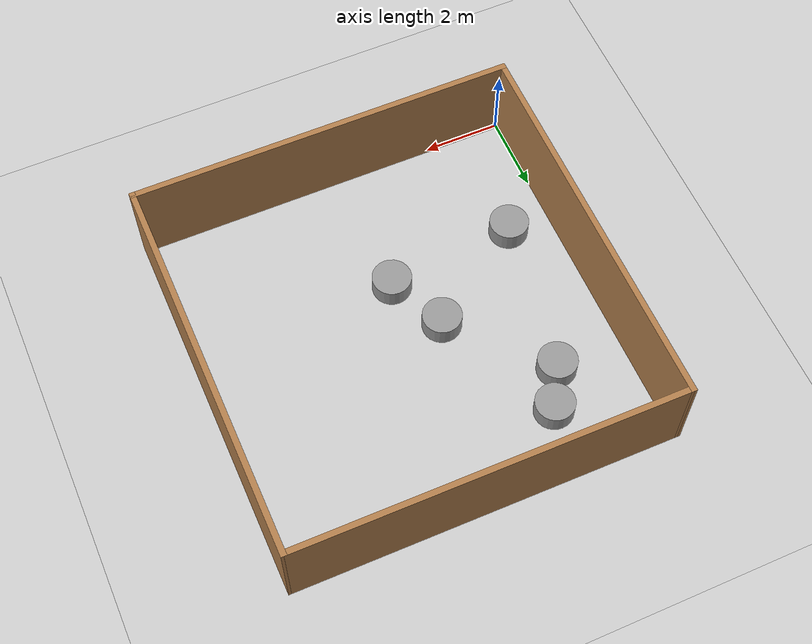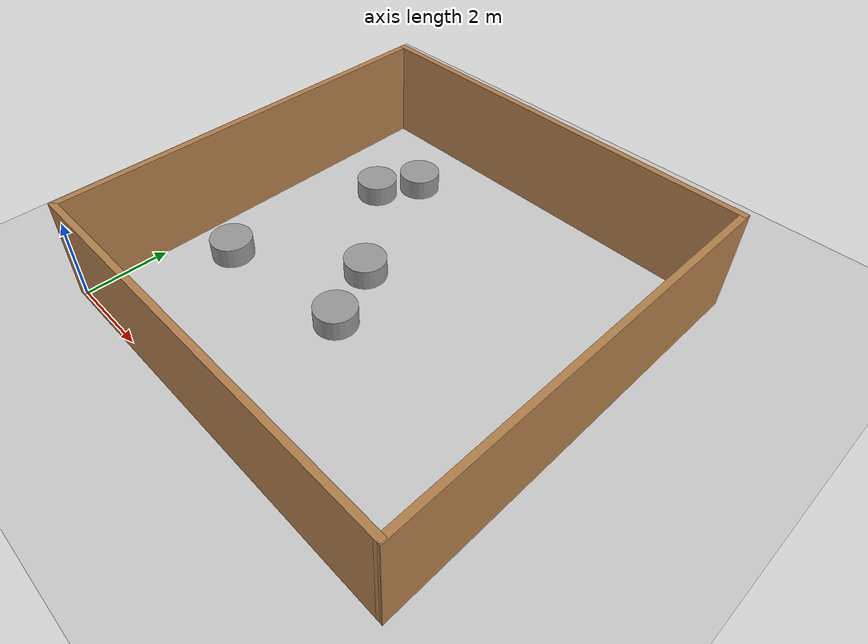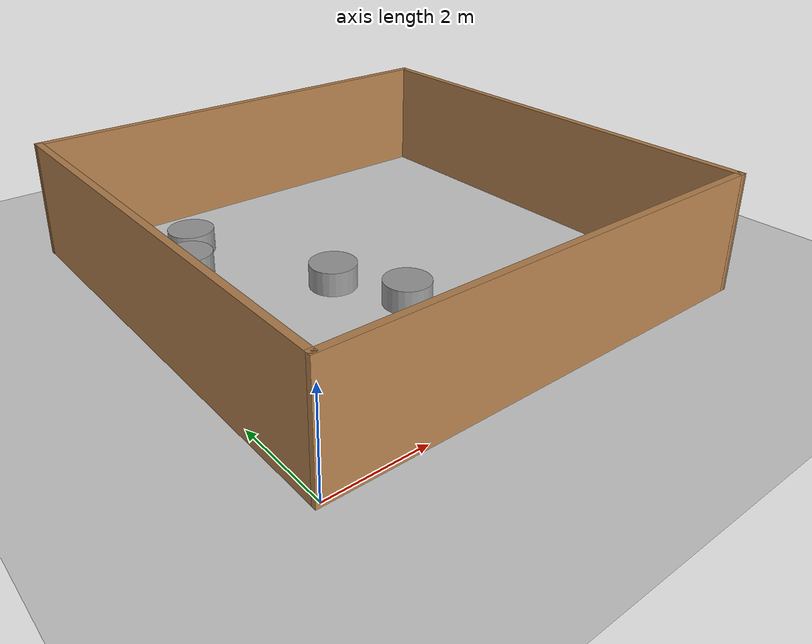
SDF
<sdf version="1.6">
 <world name="default">
  <model name="ground_plane">
   <static>1</static>
   <link name="link">
    <collision name="collision">
     <geometry><plane><normal>0 0 1</normal><size>100 100</size></plane></geometry>
     <surface><friction><ode><mu>100</mu><mu2>50</mu2></ode></friction></surface>
    </collision>
    <visual name="visual">
     <cast_shadows>0</cast_shadows>
     <geometry><plane><normal>0 0 1</normal><size>100 100</size></plane></geometry>
     <material>
      <script><uri>file://media/materials/scripts/gazebo.material</uri><name>Gazebo/Grey</name></script>
     </material>
    </visual>
   </link>
  </model>
  <model name="my_wall_01">
   <pose>4.84148 4.89701 0 0 0 -0.007021</pose>
   <link name="Wall_0">
    <collision name="Wall_0_Collision">
     <geometry><box><size>9.95377 0.15 2.5</size></box></geometry>
     <pose>0 0 1.25 0 -0 0</pose>
    </collision>
    <visual name="Wall_0_Visual">
     <pose>0 0 1.25 0 -0 0</pose>
     <geometry><box><size>9.95377 0.15 2.5</size></box></geometry>
     <material>
      <script><uri>file://media/materials/scripts/gazebo.material</uri><name>Gazebo/Wood</name></script>
      <ambient>1 1 1 1</ambient>
     </material>
    </visual>
    <pose>0.034695 -4.92526 0 0 0 -3.13923</pose>
   </link>
   <link name="Wall_1">
    <collision name="Wall_1_Collision">
     <geometry><box><size>10.0004 0.15 2.5</size></box></geometry>
     <pose>0 0 1.25 0 -0 0</pose>
    </collision>
    <visual name="Wall_1_Visual">
     <pose>0 0 1.25 0 -0 0</pose>
     <geometry><box><size>10.0004 0.15 2.5</size></box></geometry>
     <material>
      <script><uri>file://media/materials/scripts/gazebo.material</uri><name>Gazebo/Wood</name></script>
      <ambient>1 1 1 1</ambient>
     </material>
    </visual>
    <pose>-4.91343 0.011303 0 0 -0 1.58019</pose>
   </link>
   <link name="Wall_2">
    <collision name="Wall_2_Collision">
     <geometry><box><size>9.95374 0.15 2.5</size></box></geometry>
     <pose>0 0 1.25 0 -0 0</pose>
    </collision>
    <visual name="Wall_2_Visual">
     <pose>0 0 1.25 0 -0 0</pose>
     <geometry><box><size>9.95374 0.15 2.5</size></box></geometry>
     <material>
      <script><uri>file://media/materials/scripts/gazebo.material</uri><name>Gazebo/Wood</name></script>
      <ambient>1 1 1 1</ambient>
     </material>
    </visual>
    <pose>-0.057827 4.9363 0 0 -0 0</pose>
   </link>
   <link name="Wall_3">
    <collision name="Wall_3_Collision">
     <geometry><box><size>10.0004 0.15 2.5</size></box></geometry>
     <pose>0 0 1.25 0 -0 0</pose>
    </collision>
    <visual name="Wall_3_Visual">
     <pose>0 0 1.25 0 -0 0</pose>
     <geometry><box><size>10.0004 0.15 2.5</size></box></geometry>
     <material>
      <script><uri>file://media/materials/scripts/gazebo.material</uri><name>Gazebo/Wood</name></script>
      <ambient>1 1 1 1</ambient>
     </material>
    </visual>
    <pose>4.91343 0.011303 0 0 0 -1.5614</pose>
   </link>
   <static>1</static>
  </model>
  <model name="c0">
   <link name="link">
    <inertial>
     <mass>0.284858</mass>
     <inertia>
      <ixx>0.0288096</ixx>
      <ixy>0</ixy>
      <ixz>0</ixz>
      <iyy>0.0288096</iyy>
      <iyz>0</iyz>
      <izz>0.010143</izz>
     </inertia>
    </inertial>
    <visual name="visual">
     <geometry><cylinder><radius>0.5</radius><length>1</length></cylinder></geometry>
     <material>
      <script><name>Gazebo/Grey</name><uri>file://media/materials/scripts/gazebo.material</uri></script>
      <ambient>0.3 0.3 0.3 1</ambient>
      <diffuse>0.7 0.7 0.7 1</diffuse>
      <specular>0.01 0.01 0.01 1</specular>
      <emissive>0 0 0 1</emissive>
      <shader type="vertex"><normal_map>__default__</normal_map></shader>
     </material>
    </visual>
    <collision name="collision">
     <geometry><cylinder><radius>0.5</radius><length>1</length></cylinder></geometry>
     <surface>
      <friction>
       <ode><mu>1</mu><mu2>1</mu2><fdir1>0 0 0</fdir1><slip1>0</slip1><slip2>0</slip2></ode>
       <torsional>
        <coefficient>1</coefficient>
        <patch_radius>0</patch_radius>
        <surface_radius>0</surface_radius>
        <use_patch_radius>1</use_patch_radius>
        <ode><slip>0</slip></ode>
       </torsional>
      </friction>
      <bounce><restitution_coefficient>0</restitution_coefficient><threshold>1e+06</threshold></bounce>
      <contact>
       <collide_without_contact>0</collide_without_contact>
       <collide_without_contact_bitmask>1</collide_without_contact_bitmask>
       <collide_bitmask>1</collide_bitmask>
       <ode>
        <soft_cfm>0</soft_cfm>
        <soft_erp>0.2</soft_erp>
        <kp>1e+13</kp>
        <kd>1</kd>
        <max_vel>0.01</max_vel>
        <min_depth>0</min_depth>
       </ode>
       <bullet>
        <split_impulse>1</split_impulse>
        <split_impulse_penetration_threshold>-0.01</split_impulse_penetration_threshold>
        <soft_cfm>0</soft_cfm>
        <soft_erp>0.2</soft_erp>
        <kp>1e+13</kp>
        <kd>1</kd>
       </bullet>
      </contact>
     </surface>
    </collision>
   </link>
   <static>1</static>
   <pose>1.1269271286984912 3.14206331147186 0 0 -0 0</pose>
  </model>
  <model name="c5">
   <link name="link">
    <inertial>
     <mass>0.284858</mass>
     <inertia>
      <ixx>0.0288096</ixx>
      <ixy>0</ixy>
      <ixz>0</ixz>
      <iyy>0.0288096</iyy>
      <iyz>0</iyz>
      <izz>0.010143</izz>
     </inertia>
    </inertial>
    <visual name="visual">
     <geometry><cylinder><radius>0.5</radius><length>1</length></cylinder></geometry>
     <material>
      <script><name>Gazebo/Grey</name><uri>file://media/materials/scripts/gazebo.material</uri></script>
      <ambient>0.3 0.3 0.3 1</ambient>
      <diffuse>0.7 0.7 0.7 1</diffuse>
      <specular>0.01 0.01 0.01 1</specular>
      <emissive>0 0 0 1</emissive>
      <shader type="vertex"><normal_map>__default__</normal_map></shader>
     </material>
    </visual>
    <collision name="collision">
     <geometry><cylinder><radius>0.5</radius><length>1</length></cylinder></geometry>
     <surface>
      <friction>
       <ode><mu>1</mu><mu2>1</mu2><fdir1>0 0 0</fdir1><slip1>0</slip1><slip2>0</slip2></ode>
       <torsional>
        <coefficient>1</coefficient>
        <patch_radius>0</patch_radius>
        <surface_radius>0</surface_radius>
        <use_patch_radius>1</use_patch_radius>
        <ode><slip>0</slip></ode>
       </torsional>
      </friction>
      <bounce><restitution_coefficient>0</restitution_coefficient><threshold>1e+06</threshold></bounce>
      <contact>
       <collide_without_contact>0</collide_without_contact>
       <collide_without_contact_bitmask>1</collide_without_contact_bitmask>
       <collide_bitmask>1</collide_bitmask>
       <ode>
        <soft_cfm>0</soft_cfm>
        <soft_erp>0.2</soft_erp>
        <kp>1e+13</kp>
        <kd>1</kd>
        <max_vel>0.01</max_vel>
        <min_depth>0</min_depth>
       </ode>
       <bullet>
        <split_impulse>1</split_impulse>
        <split_impulse_penetration_threshold>-0.01</split_impulse_penetration_threshold>
        <soft_cfm>0</soft_cfm>
        <soft_erp>0.2</soft_erp>
        <kp>1e+13</kp>
        <kd>1</kd>
       </bullet>
      </contact>
     </surface>
    </collision>
   </link>
   <static>1</static>
   <pose>2.3016859293961742 8.145363377785102 0 0 -0 0</pose>
  </model>
  <model name="c6">
   <link name="link">
    <inertial>
     <mass>0.284858</mass>
     <inertia>
      <ixx>0.0288096</ixx>
      <ixy>0</ixy>
      <ixz>0</ixz>
      <iyy>0.0288096</iyy>
      <iyz>0</iyz>
      <izz>0.010143</izz>
     </inertia>
    </inertial>
    <visual name="visual">
     <geometry><cylinder><radius>0.5</radius><length>1</length></cylinder></geometry>
     <material>
      <script><name>Gazebo/Grey</name><uri>file://media/materials/scripts/gazebo.material</uri></script>
      <ambient>0.3 0.3 0.3 1</ambient>
      <diffuse>0.7 0.7 0.7 1</diffuse>
      <specular>0.01 0.01 0.01 1</specular>
      <emissive>0 0 0 1</emissive>
      <shader type="vertex"><normal_map>__default__</normal_map></shader>
     </material>
    </visual>
    <collision name="collision">
     <geometry><cylinder><radius>0.5</radius><length>1</length></cylinder></geometry>
     <surface>
      <friction>
       <ode><mu>1</mu><mu2>1</mu2><fdir1>0 0 0</fdir1><slip1>0</slip1><slip2>0</slip2></ode>
       <torsional>
        <coefficient>1</coefficient>
        <patch_radius>0</patch_radius>
        <surface_radius>0</surface_radius>
        <use_patch_radius>1</use_patch_radius>
        <ode><slip>0</slip></ode>
       </torsional>
      </friction>
      <bounce><restitution_coefficient>0</restitution_coefficient><threshold>1e+06</threshold></bounce>
      <contact>
       <collide_without_contact>0</collide_without_contact>
       <collide_without_contact_bitmask>1</collide_without_contact_bitmask>
       <collide_bitmask>1</collide_bitmask>
       <ode>
        <soft_cfm>0</soft_cfm>
        <soft_erp>0.2</soft_erp>
        <kp>1e+13</kp>
        <kd>1</kd>
        <max_vel>0.01</max_vel>
        <min_depth>0</min_depth>
       </ode>
       <bullet>
        <split_impulse>1</split_impulse>
        <split_impulse_penetration_threshold>-0.01</split_impulse_penetration_threshold>
        <soft_cfm>0</soft_cfm>
        <soft_erp>0.2</soft_erp>
        <kp>1e+13</kp>
        <kd>1</kd>
       </bullet>
      </contact>
     </surface>
    </collision>
   </link>
   <static>1</static>
   <pose>4.5057712642713605 3.452687488029216 0 0 -0 0</pose>
  </model>
  <model name="c7">
   <link name="link">
    <inertial>
     <mass>0.284858</mass>
     <inertia>
      <ixx>0.0288096</ixx>
      <ixy>0</ixy>
      <ixz>0</ixz>
      <iyy>0.0288096</iyy>
      <iyz>0</iyz>
      <izz>0.010143</izz>
     </inertia>
    </inertial>
    <visual name="visual">
     <geometry><cylinder><radius>0.5</radius><length>1</length></cylinder></geometry>
     <material>
      <script><name>Gazebo/Grey</name><uri>file://media/materials/scripts/gazebo.material</uri></script>
      <ambient>0.3 0.3 0.3 1</ambient>
      <diffuse>0.7 0.7 0.7 1</diffuse>
      <specular>0.01 0.01 0.01 1</specular>
      <emissive>0 0 0 1</emissive>
      <shader type="vertex"><normal_map>__default__</normal_map></shader>
     </material>
    </visual>
    <collision name="collision">
     <geometry><cylinder><radius>0.5</radius><length>1</length></cylinder></geometry>
     <surface>
      <friction>
       <ode><mu>1</mu><mu2>1</mu2><fdir1>0 0 0</fdir1><slip1>0</slip1><slip2>0</slip2></ode>
       <torsional>
        <coefficient>1</coefficient>
        <patch_radius>0</patch_radius>
        <surface_radius>0</surface_radius>
        <use_patch_radius>1</use_patch_radius>
        <ode><slip>0</slip></ode>
       </torsional>
      </friction>
      <bounce><restitution_coefficient>0</restitution_coefficient><threshold>1e+06</threshold></bounce>
      <contact>
       <collide_without_contact>0</collide_without_contact>
       <collide_without_contact_bitmask>1</collide_without_contact_bitmask>
       <collide_bitmask>1</collide_bitmask>
       <ode>
        <soft_cfm>0</soft_cfm>
        <soft_erp>0.2</soft_erp>
        <kp>1e+13</kp>
        <kd>1</kd>
        <max_vel>0.01</max_vel>
        <min_depth>0</min_depth>
       </ode>
       <bullet>
        <split_impulse>1</split_impulse>
        <split_impulse_penetration_threshold>-0.01</split_impulse_penetration_threshold>
        <soft_cfm>0</soft_cfm>
        <soft_erp>0.2</soft_erp>
        <kp>1e+13</kp>
        <kd>1</kd>
       </bullet>
      </contact>
     </surface>
    </collision>
   </link>
   <static>1</static>
   <pose>1.750075840398912 7.169876335008089 0 0 -0 0</pose>
  </model>
  <model name="c8">
   <link name="link">
    <inertial>
     <mass>0.284858</mass>
     <inertia>
      <ixx>0.0288096</ixx>
      <ixy>0</ixy>
      <ixz>0</ixz>
      <iyy>0.0288096</iyy>
      <iyz>0</iyz>
      <izz>0.010143</izz>
     </inertia>
    </inertial>
    <visual name="visual">
     <geometry><cylinder><radius>0.5</radius><length>1</length></cylinder></geometry>
     <material>
      <script><name>Gazebo/Grey</name><uri>file://media/materials/scripts/gazebo.material</uri></script>
      <ambient>0.3 0.3 0.3 1</ambient>
      <diffuse>0.7 0.7 0.7 1</diffuse>
      <specular>0.01 0.01 0.01 1</specular>
      <emissive>0 0 0 1</emissive>
      <shader type="vertex"><normal_map>__default__</normal_map></shader>
     </material>
    </visual>
    <collision name="collision">
     <geometry><cylinder><radius>0.5</radius><length>1</length></cylinder></geometry>
     <surface>
      <friction>
       <ode><mu>1</mu><mu2>1</mu2><fdir1>0 0 0</fdir1><slip1>0</slip1><slip2>0</slip2></ode>
       <torsional>
        <coefficient>1</coefficient>
        <patch_radius>0</patch_radius>
        <surface_radius>0</surface_radius>
        <use_patch_radius>1</use_patch_radius>
        <ode><slip>0</slip></ode>
       </torsional>
      </friction>
      <bounce><restitution_coefficient>0</restitution_coefficient><threshold>1e+06</threshold></bounce>
      <contact>
       <collide_without_contact>0</collide_without_contact>
       <collide_without_contact_bitmask>1</collide_without_contact_bitmask>
       <collide_bitmask>1</collide_bitmask>
       <ode>
        <soft_cfm>0</soft_cfm>
        <soft_erp>0.2</soft_erp>
        <kp>1e+13</kp>
        <kd>1</kd>
        <max_vel>0.01</max_vel>
        <min_depth>0</min_depth>
       </ode>
       <bullet>
        <split_impulse>1</split_impulse>
        <split_impulse_penetration_threshold>-0.01</split_impulse_penetration_threshold>
        <soft_cfm>0</soft_cfm>
        <soft_erp>0.2</soft_erp>
        <kp>1e+13</kp>
        <kd>1</kd>
       </bullet>
      </contact>
     </surface>
    </collision>
   </link>
   <static>1</static>
   <pose>3.80074275848442 4.931977920377866 0 0 -0 0</pose>
  </model>
 </world>
</sdf>
